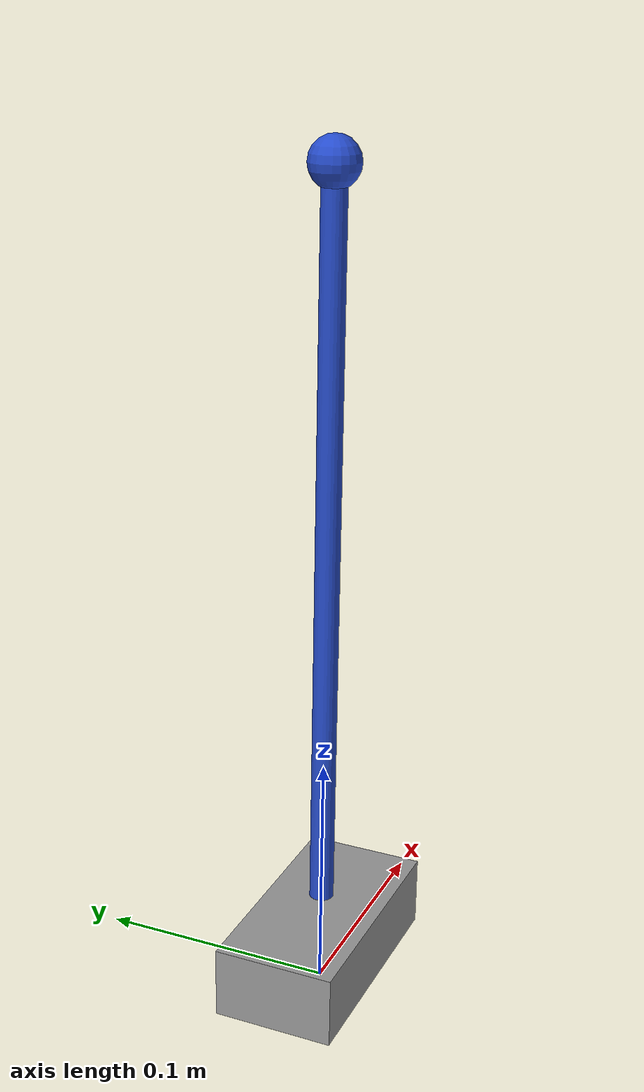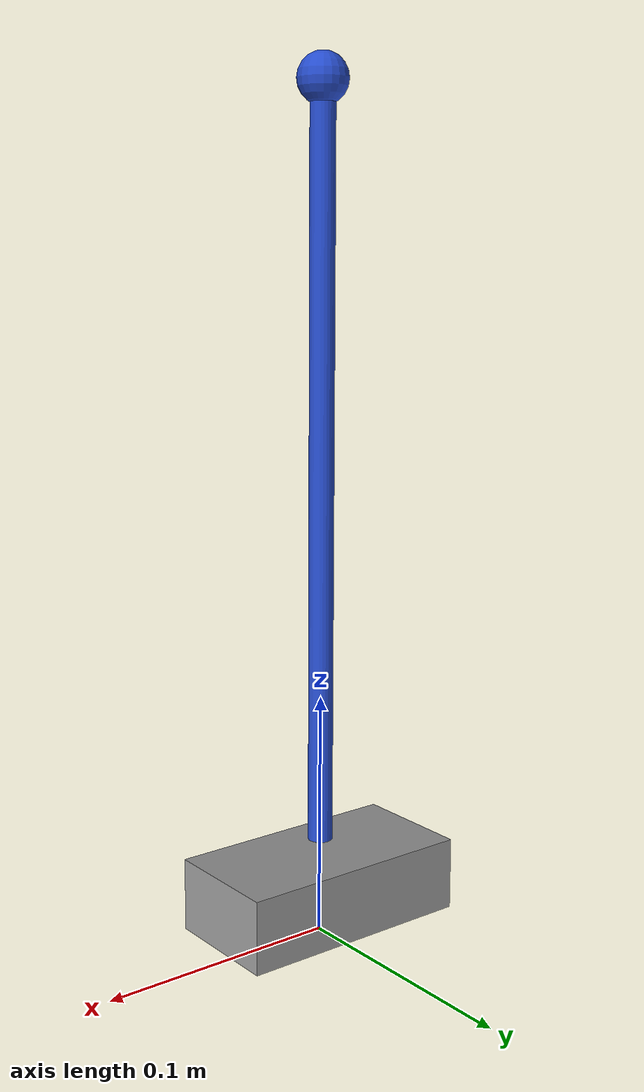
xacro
<?xml version="1.0"?>
<robot name="inverted_pendulum" xmlns:xacro="http://ros.org/wiki/xacro">

<!-- this is a simplified version of inverted pendulum from inverted_pendulum_w_wheels
without wheels and with linear joint -->

<xacro:property name="M_PI" value="3.14159265" />

<xacro:property name="pendulum_length" value="0.3" />

<link name="world"/>

<link name="vehicle_body">
  <inertial>
    <mass value="1.0" />
    <inertia ixx="0.01" ixy="0.0" ixz="0.0"
      iyy="0.01" iyz="0.0"
      izz="0.01" />
  </inertial>

  <visual>
    <geometry>
      <box size="0.1 0.05 0.03"/>
    </geometry>
  </visual>

  <collision>
    <geometry>
      <box size="0.1 0.05 0.03"/>
    </geometry>
  </collision>
</link>

<gazebo reference="vehicle_body">
  <material>Gazebo/Grey</material>
</gazebo>

<joint name="vehicle_joint" type="prismatic">
  <parent link="world" />
  <child link="vehicle_body" />
  <origin xyz="0 0 0.02"/>
  <axis xyz="1 0 0" />
  <limit lower="-1" upper="1" effort="1000" velocity="1000" />
  <dynamics damping="0.0" />
</joint>

<!-- the inverted pendulum link -->
<link name="pendulum">
  <inertial>
    <mass value="0.1" />
    <origin xyz="0 0 ${pendulum_length/2}" />
    <inertia ixx="0.005" ixy="0.0" ixz="0.0"
      iyy="0.005" iyz="0.0"
      izz="0.001" />
  </inertial>

  <visual>
    <origin xyz="0 0 ${pendulum_length/2}" />
    <geometry>
      <cylinder radius="0.005" length="${pendulum_length}" />
    </geometry>
  </visual>

  <collision>
    <origin xyz="0 0 ${pendulum_length/2}" />
    <geometry>
      <cylinder radius="0.005" length="${pendulum_length}" />
    </geometry>
  </collision>
</link>

<gazebo reference="pendulum">
  <material>Gazebo/Blue</material>
</gazebo>

<!-- the inverted pendulum joint -->
<joint name="pendulum_joint" type="revolute">
  <parent link="vehicle_body" />
  <child link="pendulum" />
  <origin xyz="0 0 0.02"/>
  <axis xyz="0 1 0" />
  <limit lower="-${M_PI/2}" upper="${M_PI/2}" effort="1000" velocity="1000" />
  <!-- set limit for pendulum to not cross vehicle body -->
</joint>

<!-- the fixed mass at the top of the pendulum -->
<link name="pendulum_mass">
  <inertial>
    <mass value="1.0" />
    <inertia ixx="0.001" ixy="0.0" ixz="0.0"
      iyy="0.001" iyz="0.0"
      izz="0.001" />
  </inertial>

  <visual>
    <geometry>
      <sphere radius="0.01" />
    </geometry>
  </visual>

  <collision>
    <geometry>
      <sphere radius="0.01" />
    </geometry>
  </collision>
</link>

<gazebo reference="pendulum_mass">
  <material>Gazebo/Blue</material>
</gazebo>

<!-- fixed joint for pendulum mass -->
<joint name="pendulum_mass_joint" type="fixed">
  <parent link="pendulum" />
  <child link="pendulum_mass" />
  <origin xyz="0 0 ${pendulum_length}"/>
</joint>

</robot>
